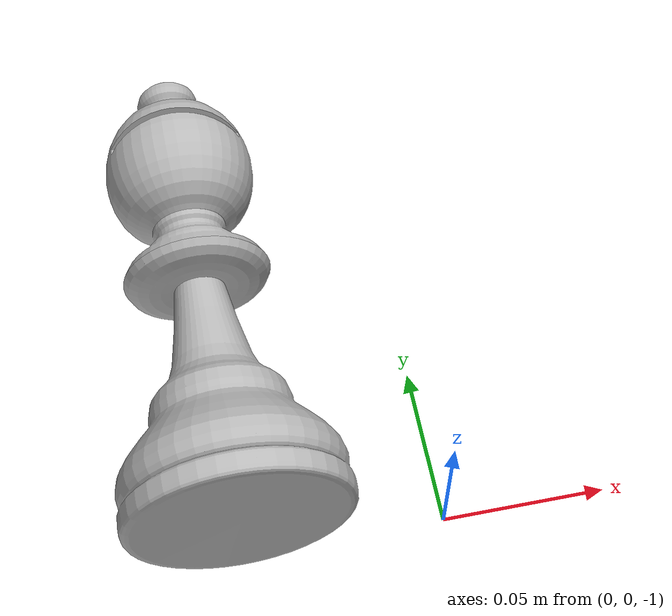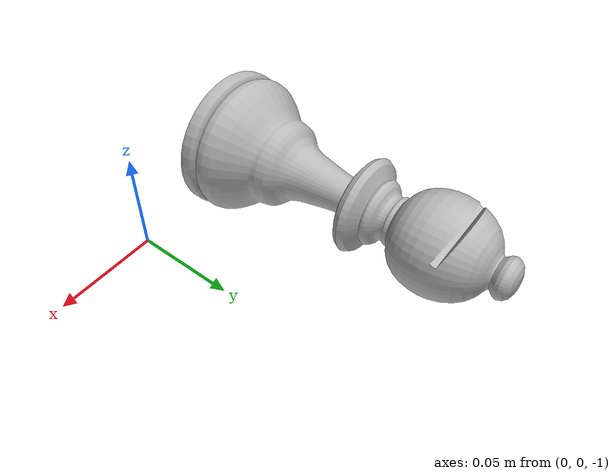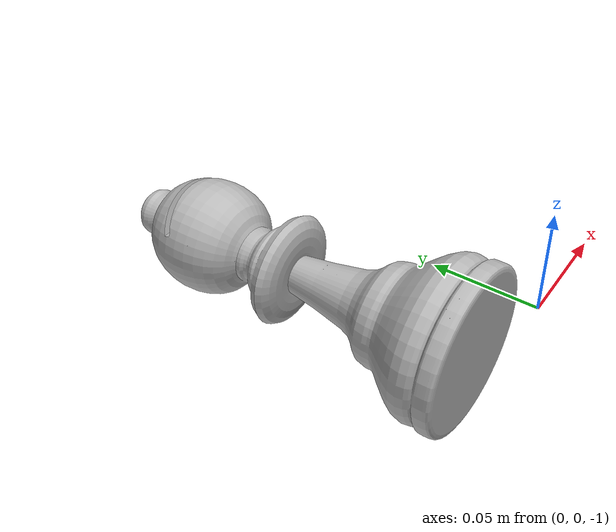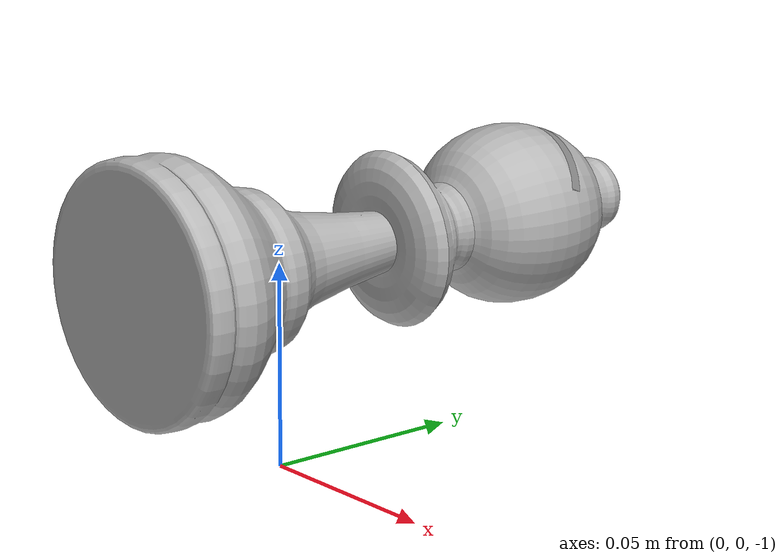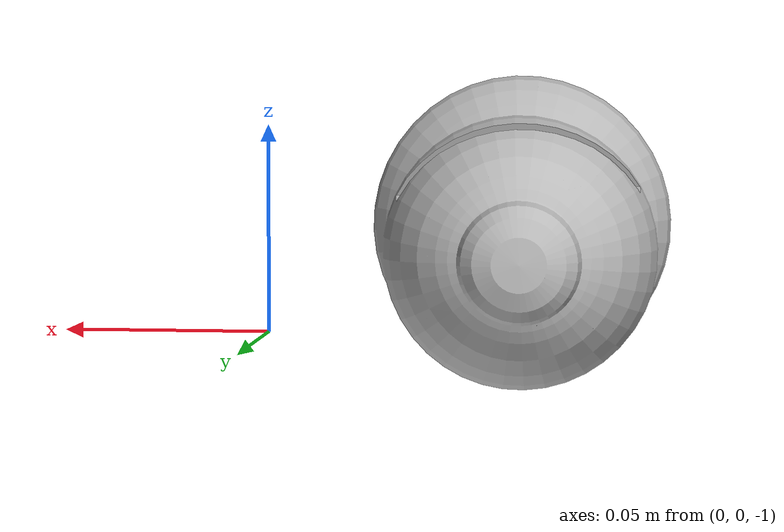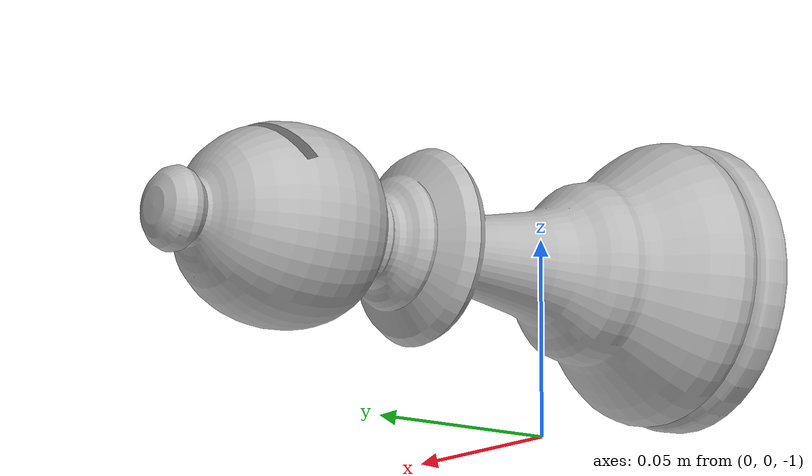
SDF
<?xml version="1.0"?>
<sdf version="1.7">
  <model name="light_bishop">
    <pose>0 0 0 0 0 0</pose>
    <link name="link">
      <inertial>
        <mass>0.05</mass>
        <inertia>
          <ixx>0.000015</ixx>
          <ixy>0.0</ixy>
          <ixz>0.0</ixz>
          <iyy>0.000015</iyy>
          <iyz>0.0</iyz>
          <izz>0.0000108</izz>
        </inertia>
      </inertial>
      <collision name="collision">
        <geometry>
          <box>
            <size>0.03 0.03 0.06</size>
          </box>
        </geometry>
      </collision>
      <visual name="box_visual">
        <geometry>
          <mesh>
            <uri>model.obj</uri>
            <scale>0.00044 0.00044 0.00044</scale>
          </mesh>
        </geometry>
      </visual>
    </link>
  </model>
</sdf>
